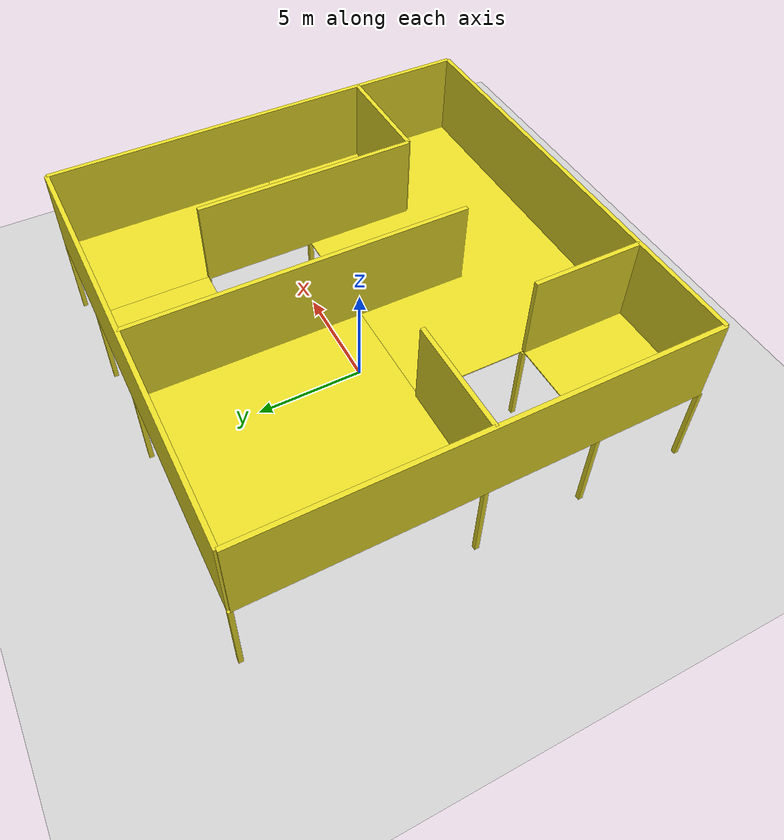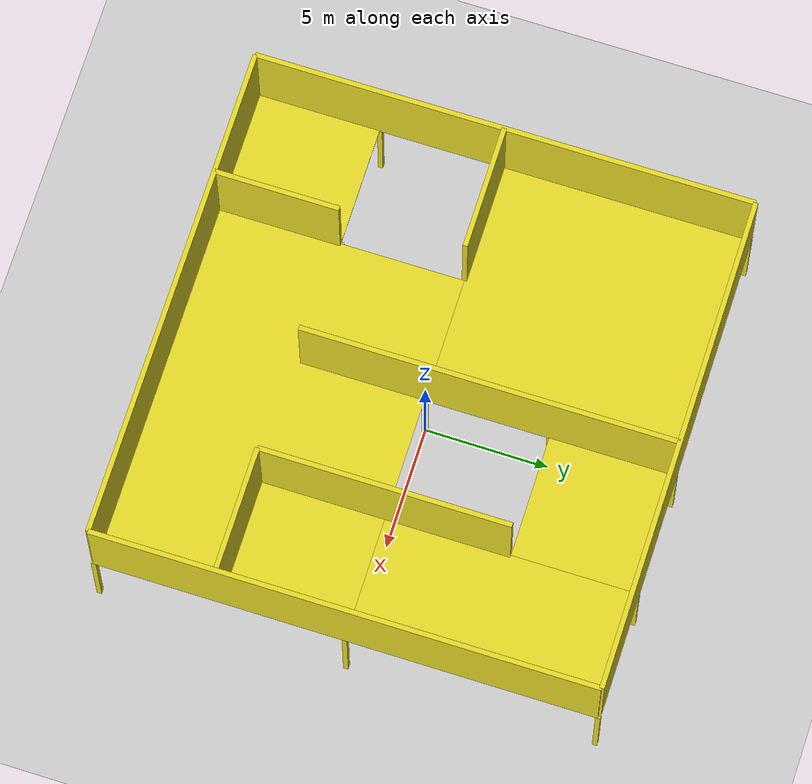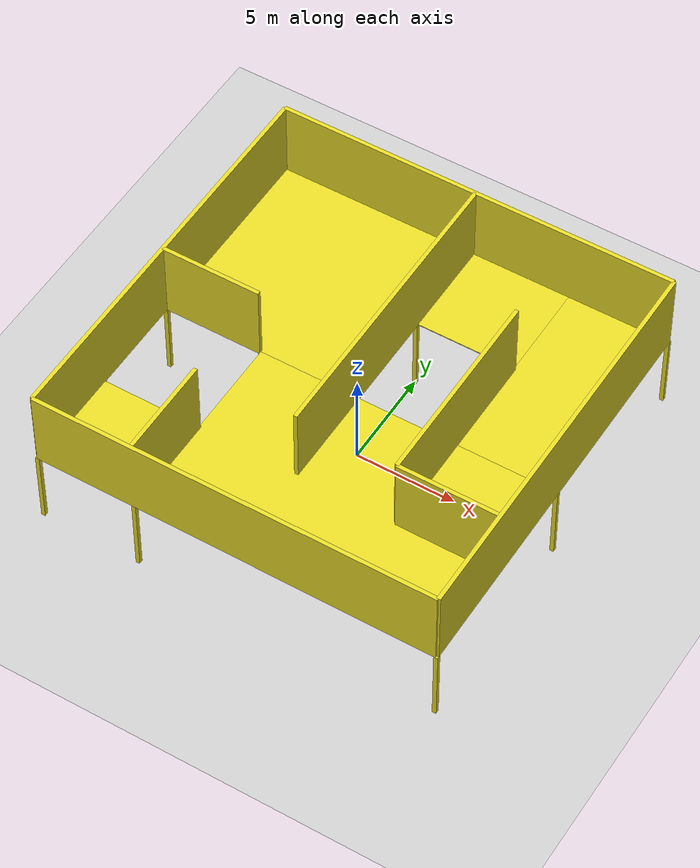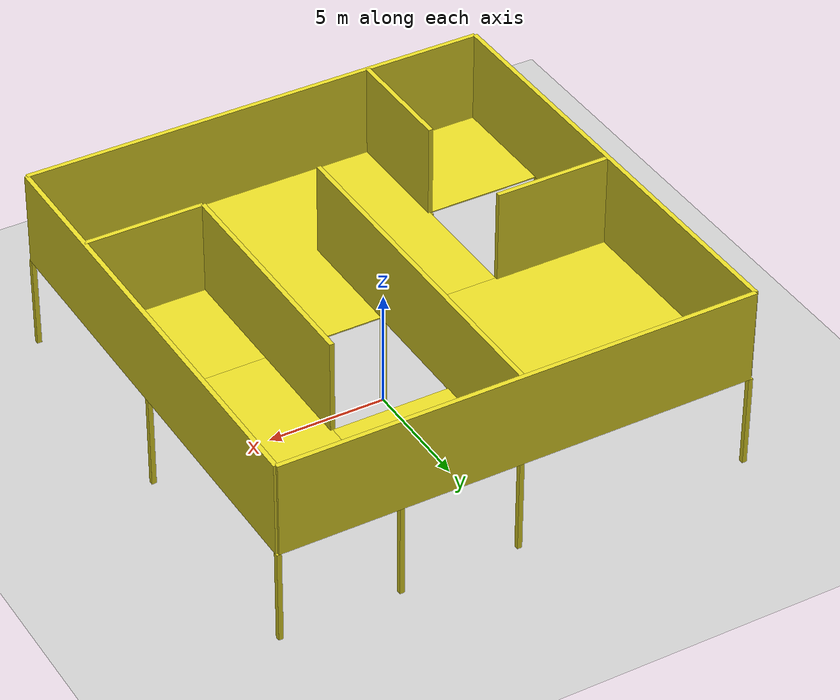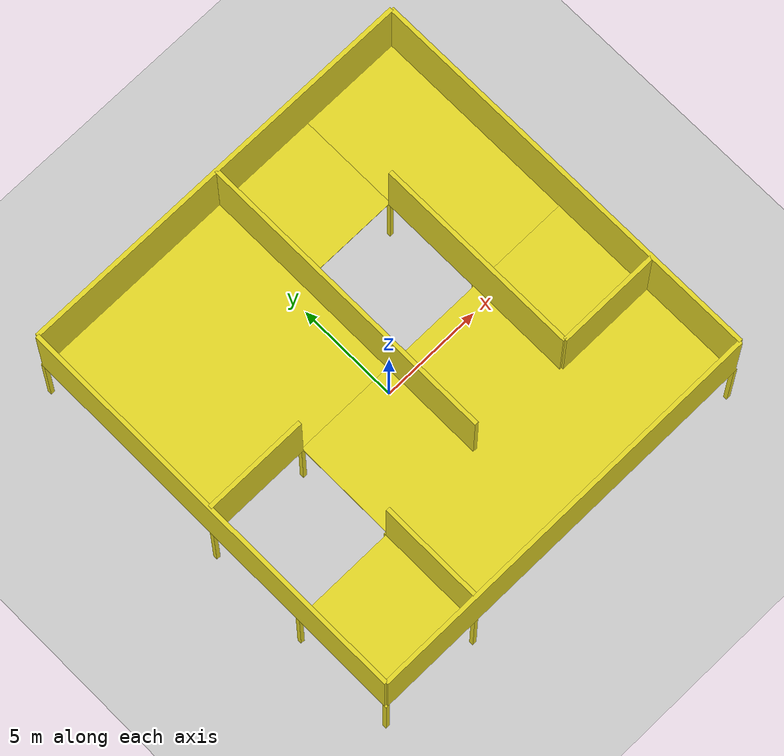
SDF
<sdf version="1.4">
 <world name="default">
  <include><uri>model://ground_plane</uri></include>
  <include><uri>model://sun</uri><pose>0 0 3 0 0 0</pose></include>
  <include><uri>model://sun</uri></include>
  <include><name>inHouse</name><uri>model://inHouse</uri></include>
 </world>
</sdf>

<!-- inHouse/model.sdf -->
<sdf version='1.3'>
  <model name='inHouse'>
    <static>true</static>
    <link name='Wall_1_1'>
      <collision name='Wall_1_1_Collision'>
        <geometry>
          <box>
            <size>0.2 0.2 4.0</size>
          </box>
        </geometry>
        <pose>0 0 2.0 0 0 0</pose>
      </collision>
      <visual name='Wall_1_1_Visual'>
        <pose>0 0 2.0 0 0 0</pose>
        <geometry>
          <box>
            <size>0.2 0.2 4.0</size>
          </box>
        </geometry>
        <material>
          <script>
            <uri>file://media/materials/scripts/gazebo.material</uri>
            <name>Gazebo/Yellow</name>
          </script>
        </material>
      </visual>
      <velocity_decay>
        <linear>0</linear>
        <angular>0</angular>
      </velocity_decay>
      <pose>10 10 0 0 0 0</pose>
    </link>
    <link name='Wall_1_2'>
      <collision name='Wall_1_2_Collision'>
        <geometry>
          <box>
            <size>0.2 0.2 4.0</size>
          </box>
        </geometry>
        <pose>0 0 2.0 0 0 0</pose>
      </collision>
      <visual name='Wall_1_2_Visual'>
        <pose>0 0 2.0 0 0 0</pose>
        <geometry>
          <box>
            <size>0.2 0.2 4.0</size>
          </box>
        </geometry>
        <material>
          <script>
            <uri>file://media/materials/scripts/gazebo.material</uri>
            <name>Gazebo/Yellow</name>
          </script>
        </material>
      </visual>
      <velocity_decay>
        <linear>0</linear>
        <angular>0</angular>
      </velocity_decay>
      <pose>10 0 0 0 0 0</pose>
    </link>
    <link name='Wall_1_3'>
      <collision name='Wall_1_3_Collision'>
        <geometry>
          <box>
            <size>0.2 0.2 4.0</size>
          </box>
        </geometry>
        <pose>0 0 2.0 0 0 0</pose>
      </collision>
      <visual name='Wall_1_3_Visual'>
        <pose>0 0 2.0 0 0 0</pose>
        <geometry>
          <box>
            <size>0.2 0.2 4.0</size>
          </box>
        </geometry>
        <material>
          <script>
            <uri>file://media/materials/scripts/gazebo.material</uri>
            <name>Gazebo/Yellow</name>
          </script>
        </material>
      </visual>
      <velocity_decay>
        <linear>0</linear>
        <angular>0</angular>
      </velocity_decay>
      <pose>10 -10 0 0 0 0</pose>
    </link>
    <link name='Wall_1_4'>
      <collision name='Wall_1_4_Collision'>
        <geometry>
          <box>
            <size>0.2 0.2 4.0</size>
          </box>
        </geometry>
        <pose>0 0 2.0 0 0 0</pose>
      </collision>
      <visual name='Wall_1_4_Visual'>
        <pose>0 0 2.0 0 0 0</pose>
        <geometry>
          <box>
            <size>0.2 0.2 4.0</size>
          </box>
        </geometry>
        <material>
          <script>
            <uri>file://media/materials/scripts/gazebo.material</uri>
            <name>Gazebo/Yellow</name>
          </script>
        </material>
      </visual>
      <velocity_decay>
        <linear>0</linear>
        <angular>0</angular>
      </velocity_decay>
      <pose>5 10 0 0 0 0</pose>
    </link>
    <link name='Wall_1_5'>
      <collision name='Wall_1_5_Collision'>
        <geometry>
          <box>
            <size>0.2 0.2 4.0</size>
          </box>
        </geometry>
        <pose>0 0 2.0 0 0 0</pose>
      </collision>
      <visual name='Wall_1_5_Visual'>
        <pose>0 0 2.0 0 0 0</pose>
        <geometry>
          <box>
            <size>0.2 0.2 4.0</size>
          </box>
        </geometry>
        <material>
          <script>
            <uri>file://media/materials/scripts/gazebo.material</uri>
            <name>Gazebo/Yellow</name>
          </script>
        </material>
      </visual>
      <velocity_decay>
        <linear>0</linear>
        <angular>0</angular>
      </velocity_decay>
      <pose>5 5 0 0 0 0</pose>
    </link>
    <link name='Wall_1_6'>
      <collision name='Wall_1_6_Collision'>
        <geometry>
          <box>
            <size>0.2 0.2 4.0</size>
          </box>
        </geometry>
        <pose>0 0 2.0 0 0 0</pose>
      </collision>
      <visual name='Wall_1_6_Visual'>
        <pose>0 0 2.0 0 0 0</pose>
        <geometry>
          <box>
            <size>0.2 0.2 4.0</size>
          </box>
        </geometry>
        <material>
          <script>
            <uri>file://media/materials/scripts/gazebo.material</uri>
            <name>Gazebo/Yellow</name>
          </script>
        </material>
      </visual>
      <velocity_decay>
        <linear>0</linear>
        <angular>0</angular>
      </velocity_decay>
      <pose>5 0 0 0 0 0</pose>
    </link>
    <link name='Wall_1_7'>
      <collision name='Wall_1_7_Collision'>
        <geometry>
          <box>
            <size>0.2 0.2 4.0</size>
          </box>
        </geometry>
        <pose>0 0 2.0 0 0 0</pose>
      </collision>
      <visual name='Wall_1_7_Visual'>
        <pose>0 0 2.0 0 0 0</pose>
        <geometry>
          <box>
            <size>0.2 0.2 4.0</size>
          </box>
        </geometry>
        <material>
          <script>
            <uri>file://media/materials/scripts/gazebo.material</uri>
            <name>Gazebo/Yellow</name>
          </script>
        </material>
      </visual>
      <velocity_decay>
        <linear>0</linear>
        <angular>0</angular>
      </velocity_decay>
      <pose>0 10 0 0 0 0</pose>
    </link>
    <link name='Wall_1_8'>
      <collision name='Wall_1_8_Collision'>
        <geometry>
          <box>
            <size>0.2 0.2 4.0</size>
          </box>
        </geometry>
        <pose>0 0 2.0 0 0 0</pose>
      </collision>
      <visual name='Wall_1_8_Visual'>
        <pose>0 0 2.0 0 0 0</pose>
        <geometry>
          <box>
            <size>0.2 0.2 4.0</size>
          </box>
        </geometry>
        <material>
          <script>
            <uri>file://media/materials/scripts/gazebo.material</uri>
            <name>Gazebo/Yellow</name>
          </script>
        </material>
      </visual>
      <velocity_decay>
        <linear>0</linear>
        <angular>0</angular>
      </velocity_decay>
      <pose>0 5 0 0 0 0</pose>
    </link>
    <link name='Wall_1_9'>
      <collision name='Wall_1_9_Collision'>
        <geometry>
          <box>
            <size>0.2 0.2 4.0</size>
          </box>
        </geometry>
        <pose>0 0 2.0 0 0 0</pose>
      </collision>
      <visual name='Wall_1_9_Visual'>
        <pose>0 0 2.0 0 0 0</pose>
        <geometry>
          <box>
            <size>0.2 0.2 4.0</size>
          </box>
        </geometry>
        <material>
          <script>
            <uri>file://media/materials/scripts/gazebo.material</uri>
            <name>Gazebo/Yellow</name>
          </script>
        </material>
      </visual>
      <velocity_decay>
        <linear>0</linear>
        <angular>0</angular>
      </velocity_decay>
      <pose>0 0 0 0 0 0</pose>
    </link>
    <link name='Wall_1_10'>
      <collision name='Wall_1_10_Collision'>
        <geometry>
          <box>
            <size>0.2 0.2 4.0</size>
          </box>
        </geometry>
        <pose>0 0 2.0 0 0 0</pose>
      </collision>
      <visual name='Wall_1_10_Visual'>
        <pose>0 0 2.0 0 0 0</pose>
        <geometry>
          <box>
            <size>0.2 0.2 4.0</size>
          </box>
        </geometry>
        <material>
          <script>
            <uri>file://media/materials/scripts/gazebo.material</uri>
            <name>Gazebo/Yellow</name>
          </script>
        </material>
      </visual>
      <velocity_decay>
        <linear>0</linear>
        <angular>0</angular>
      </velocity_decay>
      <pose>-5 0 0 0 0 0</pose>
    </link>
    <link name='Wall_1_11'>
      <collision name='Wall_1_11_Collision'>
        <geometry>
          <box>
            <size>0.2 0.2 4.0</size>
          </box>
        </geometry>
        <pose>0 0 2.0 0 0 0</pose>
      </collision>
      <visual name='Wall_1_11_Visual'>
        <pose>0 0 2.0 0 0 0</pose>
        <geometry>
          <box>
            <size>0.2 0.2 4.0</size>
          </box>
        </geometry>
        <material>
          <script>
            <uri>file://media/materials/scripts/gazebo.material</uri>
            <name>Gazebo/Yellow</name>
          </script>
        </material>
      </visual>
      <velocity_decay>
        <linear>0</linear>
        <angular>0</angular>
      </velocity_decay>
      <pose>-5 -5 0 0 0 0</pose>
    </link>
    <link name='Wall_1_12'>
      <collision name='Wall_1_12_Collision'>
        <geometry>
          <box>
            <size>0.2 0.2 4.0</size>
          </box>
        </geometry>
        <pose>0 0 2.0 0 0 0</pose>
      </collision>
      <visual name='Wall_1_12_Visual'>
        <pose>0 0 2.0 0 0 0</pose>
        <geometry>
          <box>
            <size>0.2 0.2 4.0</size>
          </box>
        </geometry>
        <material>
          <script>
            <uri>file://media/materials/scripts/gazebo.material</uri>
            <name>Gazebo/Yellow</name>
          </script>
        </material>
      </visual>
      <velocity_decay>
        <linear>0</linear>
        <angular>0</angular>
      </velocity_decay>
      <pose>-5 -10 0 0 0 0</pose>
    </link>
    <link name='Wall_1_13'>
      <collision name='Wall_1_13_Collision'>
        <geometry>
          <box>
            <size>0.2 0.2 4.0</size>
          </box>
        </geometry>
        <pose>0 0 2.0 0 0 0</pose>
      </collision>
      <visual name='Wall_1_13_Visual'>
        <pose>0 0 2.0 0 0 0</pose>
        <geometry>
          <box>
            <size>0.2 0.2 4.0</size>
          </box>
        </geometry>
        <material>
          <script>
            <uri>file://media/materials/scripts/gazebo.material</uri>
            <name>Gazebo/Yellow</name>
          </script>
        </material>
      </visual>
      <velocity_decay>
        <linear>0</linear>
        <angular>0</angular>
      </velocity_decay>
      <pose>-10 10 0 0 0 0</pose>
    </link>
    <link name='Wall_1_14'>
      <collision name='Wall_1_14_Collision'>
        <geometry>
          <box>
            <size>0.2 0.2 4.0</size>
          </box>
        </geometry>
        <pose>0 0 2.0 0 0 0</pose>
      </collision>
      <visual name='Wall_1_14_Visual'>
        <pose>0 0 2.0 0 0 0</pose>
        <geometry>
          <box>
            <size>0.2 0.2 4.0</size>
          </box>
        </geometry>
        <material>
          <script>
            <uri>file://media/materials/scripts/gazebo.material</uri>
            <name>Gazebo/Yellow</name>
          </script>
        </material>
      </visual>
      <velocity_decay>
        <linear>0</linear>
        <angular>0</angular>
      </velocity_decay>
      <pose>-10 0 0 0 0 0</pose>
    </link>
    <link name='Wall_1_15'>
      <collision name='Wall_1_15_Collision'>
        <geometry>
          <box>
            <size>0.2 0.2 4.0</size>
          </box>
        </geometry>
        <pose>0 0 2.0 0 0 0</pose>
      </collision>
      <visual name='Wall_1_15_Visual'>
        <pose>0 0 2.0 0 0 0</pose>
        <geometry>
          <box>
            <size>0.2 0.2 4.0</size>
          </box>
        </geometry>
        <material>
          <script>
            <uri>file://media/materials/scripts/gazebo.material</uri>
            <name>Gazebo/Yellow</name>
          </script>
        </material>
      </visual>
      <velocity_decay>
        <linear>0</linear>
        <angular>0</angular>
      </velocity_decay>
      <pose>-10 -5 0 0 0 0</pose>
    </link>
    <link name='Wall_1_16'>
      <collision name='Wall_1_16_Collision'>
        <geometry>
          <box>
            <size>0.2 0.2 4.0</size>
          </box>
        </geometry>
        <pose>0 0 2.0 0 0 0</pose>
      </collision>
      <visual name='Wall_1_16_Visual'>
        <pose>0 0 2.0 0 0 0</pose>
        <geometry>
          <box>
            <size>0.2 0.2 4.0</size>
          </box>
        </geometry>
        <material>
          <script>
            <uri>file://media/materials/scripts/gazebo.material</uri>
            <name>Gazebo/Yellow</name>
          </script>
        </material>
      </visual>
      <velocity_decay>
        <linear>0</linear>
        <angular>0</angular>
      </velocity_decay>
      <pose>-10 -10 0 0 0 0</pose>
    </link>

    <link name='floor_1_1'>
      <collision name='floor_1_1_Collision'>
        <geometry>
          <box>
            <size>5 10 0.05</size>
          </box>
        </geometry>
        <pose>0 0 0.025 0 0 0</pose>
      </collision>
      <visual name='floor_1_1_Visual'>
        <pose>0 0 0.025 0 0 0</pose>
        <geometry>
          <box>
            <size>5 10 0.05</size>
          </box>
        </geometry>
        <material>
          <script>
            <uri>file://media/materials/scripts/gazebo.material</uri>
            <name>Gazebo/Yellow</name>
          </script>
        </material>
      </visual>
      <velocity_decay>
        <linear>0</linear>
        <angular>0</angular>
      </velocity_decay>
      <pose>7.5 5 4.0 0 0 0</pose>
    </link>
    <link name='floor_1_2'>
      <collision name='floor_1_2_Collision'>
        <geometry>
          <box>
            <size>5 5 0.05</size>
          </box>
        </geometry>
        <pose>0 0 0.025 0 0 0</pose>
      </collision>
      <visual name='floor_1_2_Visual'>
        <pose>0 0 0.025 0 0 0</pose>
        <geometry>
          <box>
            <size>5 5 0.05</size>
          </box>
        </geometry>
        <material>
          <script>
            <uri>file://media/materials/scripts/gazebo.material</uri>
            <name>Gazebo/Yellow</name>
          </script>
        </material>
      </visual>
      <velocity_decay>
        <linear>0</linear>
        <angular>0</angular>
      </velocity_decay>
      <pose>2.5 7.5 4.0 0 0 0</pose>
    </link>
    <link name='floor_1_3'>
      <collision name='floor_1_3_Collision'>
        <geometry>
          <box>
            <size>10 10 0.05</size>
          </box>
        </geometry>
        <pose>0 0 0.025 0 0 0</pose>
      </collision>
      <visual name='floor_1_3_Visual'>
        <pose>0 0 0.025 0 0 0</pose>
        <geometry>
          <box>
            <size>10 10 0.05</size>
          </box>
        </geometry>
        <material>
          <script>
            <uri>file://media/materials/scripts/gazebo.material</uri>
            <name>Gazebo/Yellow</name>
          </script>
        </material>
      </visual>
      <velocity_decay>
        <linear>0</linear>
        <angular>0</angular>
      </velocity_decay>
      <pose>-5 5 4.0 0 0 0</pose>
    </link>
    <link name='floor_1_4'>
      <collision name='floor_1_4_Collision'>
        <geometry>
          <box>
            <size>15 10 0.05</size>
          </box>
        </geometry>
        <pose>0 0 0.025 0 0 0</pose>
      </collision>
      <visual name='floor_1_4_Visual'>
        <pose>0 0 0.025 0 0 0</pose>
        <geometry>
          <box>
            <size>15 10 0.05</size>
          </box>
        </geometry>
        <material>
          <script>
            <uri>file://media/materials/scripts/gazebo.material</uri>
            <name>Gazebo/Yellow</name>
          </script>
        </material>
      </visual>
      <velocity_decay>
        <linear>0</linear>
        <angular>0</angular>
      </velocity_decay>
      <pose>2.5 -5 4.0 0 0 0</pose>
    </link>
    <link name='floor_1_5'>
      <collision name='floor_1_5_Collision'>
        <geometry>
          <box>
            <size>5 5 0.05</size>
          </box>
        </geometry>
        <pose>0 0 0.025 0 0 0</pose>
      </collision>
      <visual name='floor_1_5_Visual'>
        <pose>0 0 0.025 0 0 0</pose>
        <geometry>
          <box>
            <size>5 5 0.05</size>
          </box>
        </geometry>
        <material>
          <script>
            <uri>file://media/materials/scripts/gazebo.material</uri>
            <name>Gazebo/Yellow</name>
          </script>
        </material>
      </visual>
      <velocity_decay>
        <linear>0</linear>
        <angular>0</angular>
      </velocity_decay>
      <pose>-7.5 -7.5 4.0 0 0 0</pose>
    </link>
    <link name='Wall_2_1'>
      <collision name='Wall_2_1_Collision'>
        <geometry>
          <box>
            <size>0.2 20 4.0</size>
          </box>
        </geometry>
        <pose>0 0 2.0 0 0 0</pose>
      </collision>
      <visual name='Wall_2_1_Visual'>
        <pose>0 0 2.0 0 0 0</pose>
        <geometry>
          <box>
            <size>0.2 20 4.0</size>
          </box>
        </geometry>
        <material>
          <script>
            <uri>file://media/materials/scripts/gazebo.material</uri>
            <name>Gazebo/Yellow</name>
          </script>
        </material>
      </visual>
      <velocity_decay>
        <linear>0</linear>
        <angular>0</angular>
      </velocity_decay>
      <pose>10 0 4.0 0 0 0</pose>
    </link>
    <link name='Wall_2_2'>
      <collision name='Wall_2_2_Collision'>
        <geometry>
          <box>
            <size>20 0.2 4.0</size>
          </box>
        </geometry>
        <pose>0 0 2.0 0 0 0</pose>
      </collision>
      <visual name='Wall_2_2_Visual'>
        <pose>0 0 2.0 0 0 0</pose>
        <geometry>
          <box>
            <size>20 0.2 4.0</size>
          </box>
        </geometry>
        <material>
          <script>
            <uri>file://media/materials/scripts/gazebo.material</uri>
            <name>Gazebo/Yellow</name>
          </script>
        </material>
      </visual>
      <velocity_decay>
        <linear>0</linear>
        <angular>0</angular>
      </velocity_decay>
      <pose>0 10 4.0 0 0 0</pose>
    </link>
    <link name='Wall_2_3'>
      <collision name='Wall_2_3_Collision'>
        <geometry>
          <box>
            <size>0.2 20 4.0</size>
          </box>
        </geometry>
        <pose>0 0 2.0 0 0 0</pose>
      </collision>
      <visual name='Wall_2_3_Visual'>
        <pose>0 0 2.0 0 0 0</pose>
        <geometry>
          <box>
            <size>0.2 20 4.0</size>
          </box>
        </geometry>
        <material>
          <script>
            <uri>file://media/materials/scripts/gazebo.material</uri>
            <name>Gazebo/Yellow</name>
          </script>
        </material>
      </visual>
      <velocity_decay>
        <linear>0</linear>
        <angular>0</angular>
      </velocity_decay>
      <pose>-10 0 4.0 0 0 0</pose>
    </link>
    <link name='Wall_2_4'>
      <collision name='Wall_2_4_Collision'>
        <geometry>
          <box>
            <size>20 0.2 4.0</size>
          </box>
        </geometry>
        <pose>0 0 2.0 0 0 0</pose>
      </collision>
      <visual name='Wall_2_4_Visual'>
        <pose>0 0 2.0 0 0 0</pose>
        <geometry>
          <box>
            <size>20 0.2 4.0</size>
          </box>
        </geometry>
        <material>
          <script>
            <uri>file://media/materials/scripts/gazebo.material</uri>
            <name>Gazebo/Yellow</name>
          </script>
        </material>
      </visual>
      <velocity_decay>
        <linear>0</linear>
        <angular>0</angular>
      </velocity_decay>
      <pose>0 -10 4.0 0 0 0</pose>
    </link>
    <link name='Wall_2_5'>
      <collision name='Wall_2_5_Collision'>
        <geometry>
          <box>
            <size>5 0.2 4.0</size>
          </box>
        </geometry>
        <pose>0 0 2.0 0 0 0</pose>
      </collision>
      <visual name='Wall_2_5_Visual'>
        <pose>0 0 2.0 0 0 0</pose>
        <geometry>
          <box>
            <size>5 0.2 4.0</size>
          </box>
        </geometry>
        <material>
          <script>
            <uri>file://media/materials/scripts/gazebo.material</uri>
            <name>Gazebo/Yellow</name>
          </script>
        </material>
      </visual>
      <velocity_decay>
        <linear>0</linear>
        <angular>0</angular>
      </velocity_decay>
      <pose>7.5 -5 4.0 0 0 0</pose>
    </link>
    <link name='Wall_2_6'>
      <collision name='Wall_2_6_Collision'>
        <geometry>
          <box>
            <size>0.2 10 4.0</size>
          </box>
        </geometry>
        <pose>0 0 2.0 0 0 0</pose>
      </collision>
      <visual name='Wall_2_6_Visual'>
        <pose>0 0 2.0 0 0 0</pose>
        <geometry>
          <box>
            <size>0.2 10 4.0</size>
          </box>
        </geometry>
        <material>
          <script>
            <uri>file://media/materials/scripts/gazebo.material</uri>
            <name>Gazebo/Yellow</name>
          </script>
        </material>
      </visual>
      <velocity_decay>
        <linear>0</linear>
        <angular>0</angular>
      </velocity_decay>
      <pose>5 0 4.0 0 0 0</pose>
    </link>
    <link name='Wall_2_7'>
      <collision name='Wall_2_7_Collision'>
        <geometry>
          <box>
            <size>0.2 15 4.0</size>
          </box>
        </geometry>
        <pose>0 0 2.0 0 0 0</pose>
      </collision>
      <visual name='Wall_2_7_Visual'>
        <pose>0 0 2.0 0 0 0</pose>
        <geometry>
          <box>
            <size>0.2 15 4.0</size>
          </box>
        </geometry>
        <material>
          <script>
            <uri>file://media/materials/scripts/gazebo.material</uri>
            <name>Gazebo/Yellow</name>
          </script>
        </material>
      </visual>
      <velocity_decay>
        <linear>0</linear>
        <angular>0</angular>
      </velocity_decay>
      <pose>0 2.5 4.0 0 0 0</pose>
    </link>
    <link name='Wall_2_8'>
      <collision name='Wall_2_8_Collision'>
        <geometry>
          <box>
            <size>5 0.2 4.0</size>
          </box>
        </geometry>
        <pose>0 0 2.0 0 0 0</pose>
      </collision>
      <visual name='Wall_2_8_Visual'>
        <pose>0 0 2.0 0 0 0</pose>
        <geometry>
          <box>
            <size>5 0.2 4.0</size>
          </box>
        </geometry>
        <material>
          <script>
            <uri>file://media/materials/scripts/gazebo.material</uri>
            <name>Gazebo/Yellow</name>
          </script>
        </material>
      </visual>
      <velocity_decay>
        <linear>0</linear>
        <angular>0</angular>
      </velocity_decay>
      <pose>-7.5 0 4.0 0 0 0</pose>
    </link>
    <link name='Wall_2_9'>
      <collision name='Wall_2_9_Collision'>
        <geometry>
          <box>
            <size>0.2 5 4.0</size>
          </box>
        </geometry>
        <pose>0 0 2.0 0 0 0</pose>
      </collision>
      <visual name='Wall_2_9_Visual'>
        <pose>0 0 2.0 0 0 0</pose>
        <geometry>
          <box>
            <size>0.2 5 4.0</size>
          </box>
        </geometry>
        <material>
          <script>
            <uri>file://media/materials/scripts/gazebo.material</uri>
            <name>Gazebo/Yellow</name>
          </script>
        </material>
      </visual>
      <velocity_decay>
        <linear>0</linear>
        <angular>0</angular>
      </velocity_decay>
      <pose>-5 -7.5 4.0 0 0 0</pose>
    </link>
  </model>
</sdf>
